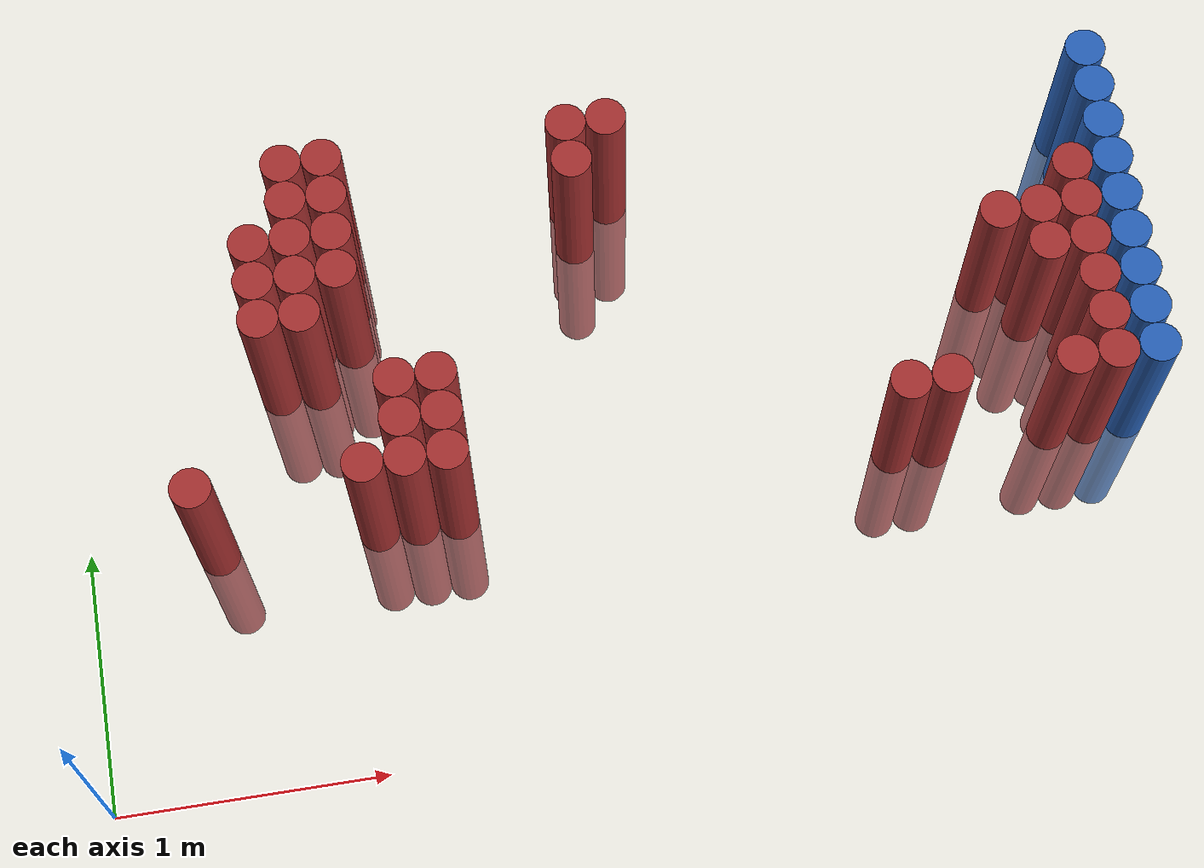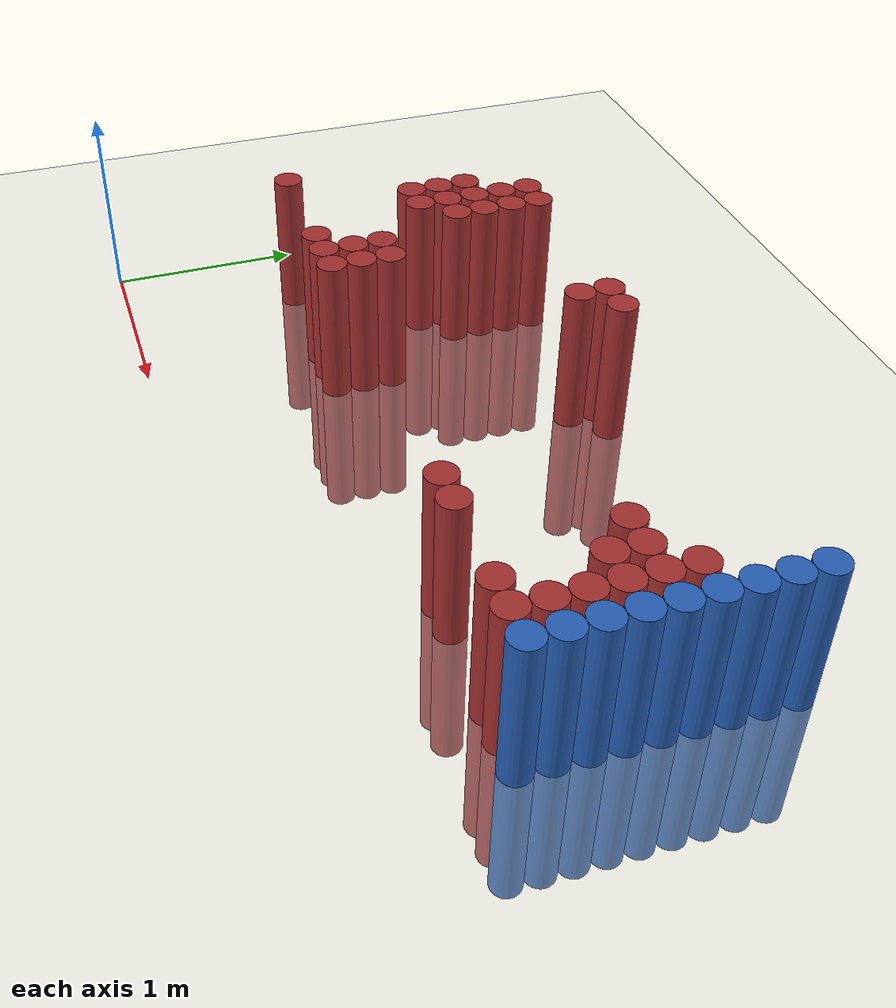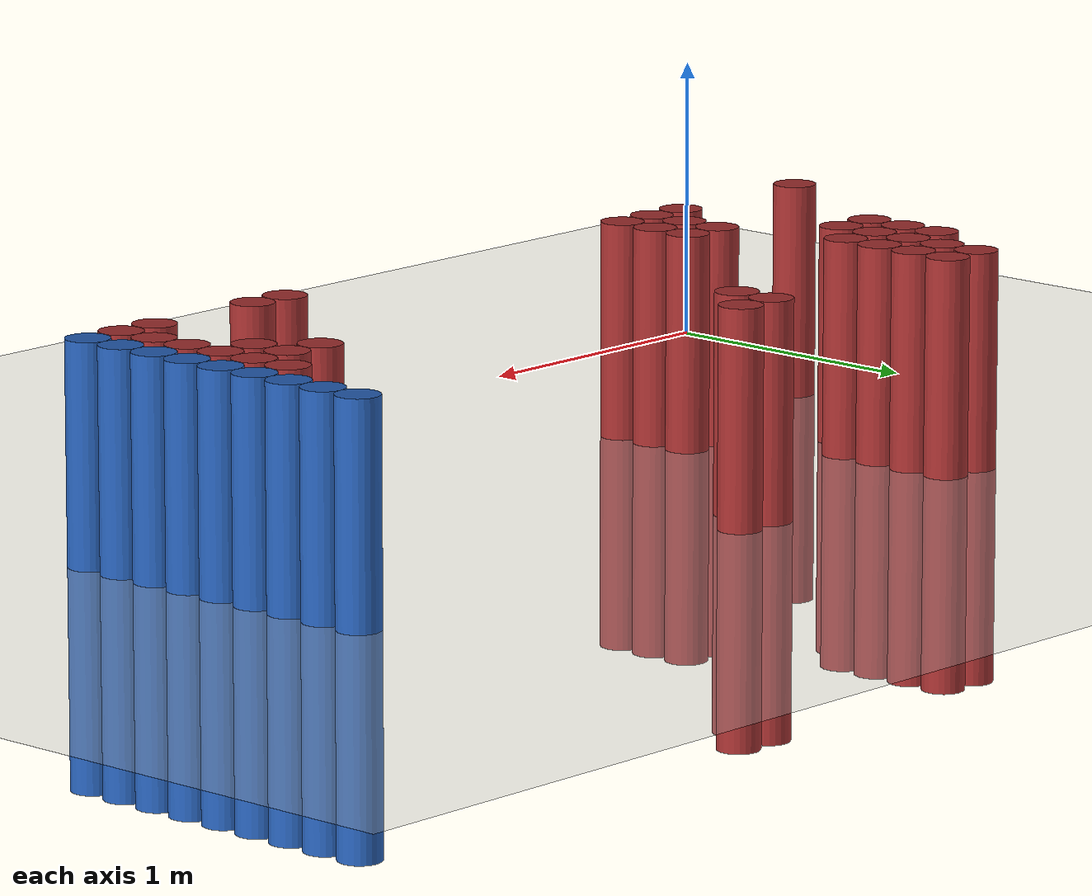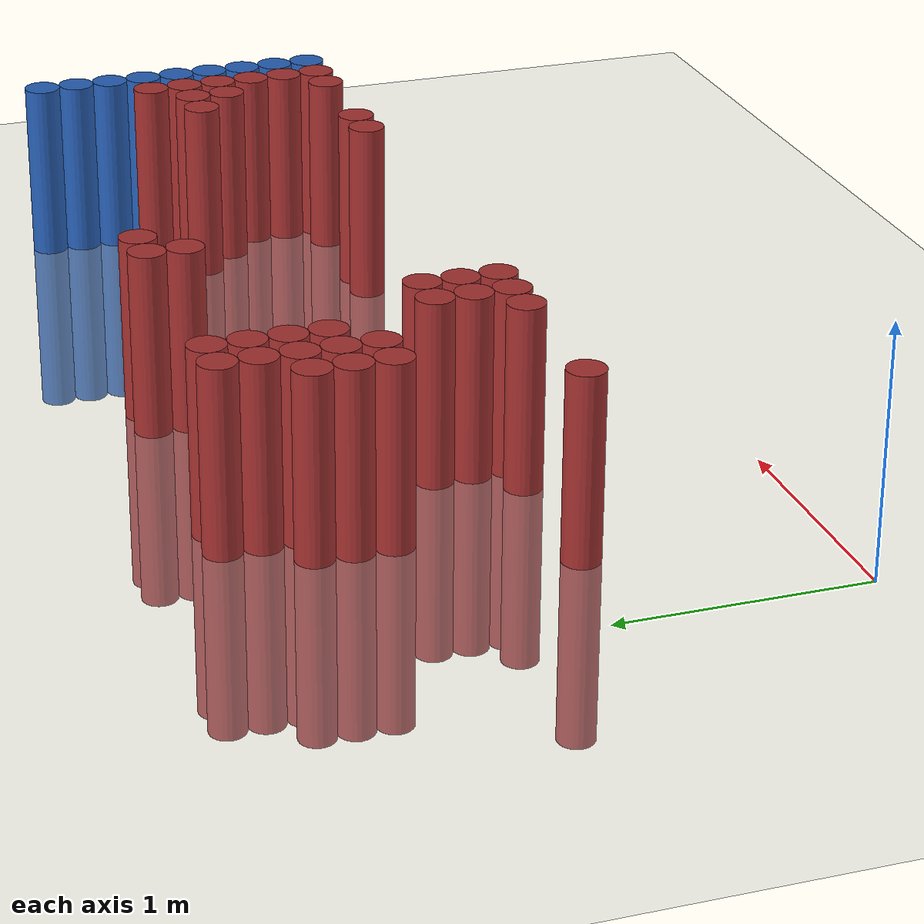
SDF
<sdf version="1.6">
 <world name="default">
  <model name="ground_plane">
   <static>1</static>
   <link name="link">
    <collision name="collision">
     <geometry><plane><normal>0 0 1</normal><size>100 100</size></plane></geometry>
     <surface><friction><ode><mu>100</mu><mu2>50</mu2></ode></friction></surface>
    </collision>
    <visual name="visual">
     <cast_shadows>0</cast_shadows>
     <geometry><plane><normal>0 0 1</normal><size>100 100</size></plane></geometry>
     <material>
      <script><uri>file://media/materials/scripts/gazebo.material</uri><name>Gazebo/Grey</name></script>
     </material>
    </visual>
   </link>
  </model>
  <model name="unit_cylinder_128">
   <static>1</static>
   <pose>3.925000 1.075000 0.000000 0.000000 0.000000 0.000000</pose>
   <link name="link">
    <inertial>
     <mass>1</mass>
     <inertia><ixx>0.145833</ixx><ixy>0</ixy><ixz>0</ixz><iyy>0.145833</iyy><iyz>0</iyz><izz>0.125</izz></inertia>
    </inertial>
    <collision name="collision">
     <geometry><cylinder><radius>0.075000</radius><length>1.5</length></cylinder></geometry>
    </collision>
    <visual name="visual">
     <geometry><cylinder><radius>0.075000</radius><length>1.5</length></cylinder></geometry>
     <material>
      <ambient>0.152000 0.379000 0.720000 1</ambient>
      <diffuse>0.152000 0.379000 0.720000 1</diffuse>
     </material>
     <material>
      <script><name>Gazebo/Grey</name><uri>file://media/materials/scripts/gazebo.material</uri></script>
     </material>
    </visual>
   </link>
  </model>
  <model name="unit_cylinder_130">
   <static>1</static>
   <pose>3.925000 1.225000 0.000000 0.000000 0.000000 0.000000</pose>
   <link name="link">
    <inertial>
     <mass>1</mass>
     <inertia><ixx>0.145833</ixx><ixy>0</ixy><ixz>0</ixz><iyy>0.145833</iyy><iyz>0</iyz><izz>0.125</izz></inertia>
    </inertial>
    <collision name="collision">
     <geometry><cylinder><radius>0.075000</radius><length>1.5</length></cylinder></geometry>
    </collision>
    <visual name="visual">
     <geometry><cylinder><radius>0.075000</radius><length>1.5</length></cylinder></geometry>
     <material>
      <ambient>0.152000 0.379000 0.720000 1</ambient>
      <diffuse>0.152000 0.379000 0.720000 1</diffuse>
     </material>
     <material>
      <script><name>Gazebo/Grey</name><uri>file://media/materials/scripts/gazebo.material</uri></script>
     </material>
    </visual>
   </link>
  </model>
  <model name="unit_cylinder_132">
   <static>1</static>
   <pose>3.925000 1.375000 0.000000 0.000000 0.000000 0.000000</pose>
   <link name="link">
    <inertial>
     <mass>1</mass>
     <inertia><ixx>0.145833</ixx><ixy>0</ixy><ixz>0</ixz><iyy>0.145833</iyy><iyz>0</iyz><izz>0.125</izz></inertia>
    </inertial>
    <collision name="collision">
     <geometry><cylinder><radius>0.075000</radius><length>1.5</length></cylinder></geometry>
    </collision>
    <visual name="visual">
     <geometry><cylinder><radius>0.075000</radius><length>1.5</length></cylinder></geometry>
     <material>
      <ambient>0.152000 0.379000 0.720000 1</ambient>
      <diffuse>0.152000 0.379000 0.720000 1</diffuse>
     </material>
     <material>
      <script><name>Gazebo/Grey</name><uri>file://media/materials/scripts/gazebo.material</uri></script>
     </material>
    </visual>
   </link>
  </model>
  <model name="unit_cylinder_134">
   <static>1</static>
   <pose>3.925000 1.525000 0.000000 0.000000 0.000000 0.000000</pose>
   <link name="link">
    <inertial>
     <mass>1</mass>
     <inertia><ixx>0.145833</ixx><ixy>0</ixy><ixz>0</ixz><iyy>0.145833</iyy><iyz>0</iyz><izz>0.125</izz></inertia>
    </inertial>
    <collision name="collision">
     <geometry><cylinder><radius>0.075000</radius><length>1.5</length></cylinder></geometry>
    </collision>
    <visual name="visual">
     <geometry><cylinder><radius>0.075000</radius><length>1.5</length></cylinder></geometry>
     <material>
      <ambient>0.152000 0.379000 0.720000 1</ambient>
      <diffuse>0.152000 0.379000 0.720000 1</diffuse>
     </material>
     <material>
      <script><name>Gazebo/Grey</name><uri>file://media/materials/scripts/gazebo.material</uri></script>
     </material>
    </visual>
   </link>
  </model>
  <model name="unit_cylinder_136">
   <static>1</static>
   <pose>3.925000 1.675000 0.000000 0.000000 0.000000 0.000000</pose>
   <link name="link">
    <inertial>
     <mass>1</mass>
     <inertia><ixx>0.145833</ixx><ixy>0</ixy><ixz>0</ixz><iyy>0.145833</iyy><iyz>0</iyz><izz>0.125</izz></inertia>
    </inertial>
    <collision name="collision">
     <geometry><cylinder><radius>0.075000</radius><length>1.5</length></cylinder></geometry>
    </collision>
    <visual name="visual">
     <geometry><cylinder><radius>0.075000</radius><length>1.5</length></cylinder></geometry>
     <material>
      <ambient>0.152000 0.379000 0.720000 1</ambient>
      <diffuse>0.152000 0.379000 0.720000 1</diffuse>
     </material>
     <material>
      <script><name>Gazebo/Grey</name><uri>file://media/materials/scripts/gazebo.material</uri></script>
     </material>
    </visual>
   </link>
  </model>
  <model name="unit_cylinder_138">
   <static>1</static>
   <pose>3.925000 1.825000 0.000000 0.000000 0.000000 0.000000</pose>
   <link name="link">
    <inertial>
     <mass>1</mass>
     <inertia><ixx>0.145833</ixx><ixy>0</ixy><ixz>0</ixz><iyy>0.145833</iyy><iyz>0</iyz><izz>0.125</izz></inertia>
    </inertial>
    <collision name="collision">
     <geometry><cylinder><radius>0.075000</radius><length>1.5</length></cylinder></geometry>
    </collision>
    <visual name="visual">
     <geometry><cylinder><radius>0.075000</radius><length>1.5</length></cylinder></geometry>
     <material>
      <ambient>0.152000 0.379000 0.720000 1</ambient>
      <diffuse>0.152000 0.379000 0.720000 1</diffuse>
     </material>
     <material>
      <script><name>Gazebo/Grey</name><uri>file://media/materials/scripts/gazebo.material</uri></script>
     </material>
    </visual>
   </link>
  </model>
  <model name="unit_cylinder_140">
   <static>1</static>
   <pose>3.925000 1.975000 0.000000 0.000000 0.000000 0.000000</pose>
   <link name="link">
    <inertial>
     <mass>1</mass>
     <inertia><ixx>0.145833</ixx><ixy>0</ixy><ixz>0</ixz><iyy>0.145833</iyy><iyz>0</iyz><izz>0.125</izz></inertia>
    </inertial>
    <collision name="collision">
     <geometry><cylinder><radius>0.075000</radius><length>1.5</length></cylinder></geometry>
    </collision>
    <visual name="visual">
     <geometry><cylinder><radius>0.075000</radius><length>1.5</length></cylinder></geometry>
     <material>
      <ambient>0.152000 0.379000 0.720000 1</ambient>
      <diffuse>0.152000 0.379000 0.720000 1</diffuse>
     </material>
     <material>
      <script><name>Gazebo/Grey</name><uri>file://media/materials/scripts/gazebo.material</uri></script>
     </material>
    </visual>
   </link>
  </model>
  <model name="unit_cylinder_142">
   <static>1</static>
   <pose>3.925000 2.125000 0.000000 0.000000 0.000000 0.000000</pose>
   <link name="link">
    <inertial>
     <mass>1</mass>
     <inertia><ixx>0.145833</ixx><ixy>0</ixy><ixz>0</ixz><iyy>0.145833</iyy><iyz>0</iyz><izz>0.125</izz></inertia>
    </inertial>
    <collision name="collision">
     <geometry><cylinder><radius>0.075000</radius><length>1.5</length></cylinder></geometry>
    </collision>
    <visual name="visual">
     <geometry><cylinder><radius>0.075000</radius><length>1.5</length></cylinder></geometry>
     <material>
      <ambient>0.152000 0.379000 0.720000 1</ambient>
      <diffuse>0.152000 0.379000 0.720000 1</diffuse>
     </material>
     <material>
      <script><name>Gazebo/Grey</name><uri>file://media/materials/scripts/gazebo.material</uri></script>
     </material>
    </visual>
   </link>
  </model>
  <model name="unit_cylinder_343">
   <static>1</static>
   <pose>0.475000 0.925000 0.000000 0.000000 0.000000 0.000000</pose>
   <link name="link">
    <inertial>
     <mass>1</mass>
     <inertia><ixx>0.145833</ixx><ixy>0</ixy><ixz>0</ixz><iyy>0.145833</iyy><iyz>0</iyz><izz>0.125</izz></inertia>
    </inertial>
    <collision name="collision">
     <geometry><cylinder><radius>0.075000</radius><length>1.5</length></cylinder></geometry>
    </collision>
    <visual name="visual">
     <geometry><cylinder><radius>0.075000</radius><length>1.5</length></cylinder></geometry>
     <material>
      <ambient>0.648000 0.192000 0.192000 1</ambient>
      <diffuse>0.648000 0.192000 0.192000 1</diffuse>
     </material>
     <material>
      <script><name>Gazebo/Grey</name><uri>file://media/materials/scripts/gazebo.material</uri></script>
     </material>
    </visual>
   </link>
  </model>
  <model name="unit_cylinder_352">
   <static>1</static>
   <pose>0.775000 1.525000 0.000000 0.000000 0.000000 0.000000</pose>
   <link name="link">
    <inertial>
     <mass>1</mass>
     <inertia><ixx>0.145833</ixx><ixy>0</ixy><ixz>0</ixz><iyy>0.145833</iyy><iyz>0</iyz><izz>0.125</izz></inertia>
    </inertial>
    <collision name="collision">
     <geometry><cylinder><radius>0.075000</radius><length>1.5</length></cylinder></geometry>
    </collision>
    <visual name="visual">
     <geometry><cylinder><radius>0.075000</radius><length>1.5</length></cylinder></geometry>
     <material>
      <ambient>0.648000 0.192000 0.192000 1</ambient>
      <diffuse>0.648000 0.192000 0.192000 1</diffuse>
     </material>
     <material>
      <script><name>Gazebo/Grey</name><uri>file://media/materials/scripts/gazebo.material</uri></script>
     </material>
    </visual>
   </link>
  </model>
  <model name="unit_cylinder_353">
   <static>1</static>
   <pose>0.775000 1.675000 0.000000 0.000000 0.000000 0.000000</pose>
   <link name="link">
    <inertial>
     <mass>1</mass>
     <inertia><ixx>0.145833</ixx><ixy>0</ixy><ixz>0</ixz><iyy>0.145833</iyy><iyz>0</iyz><izz>0.125</izz></inertia>
    </inertial>
    <collision name="collision">
     <geometry><cylinder><radius>0.075000</radius><length>1.5</length></cylinder></geometry>
    </collision>
    <visual name="visual">
     <geometry><cylinder><radius>0.075000</radius><length>1.5</length></cylinder></geometry>
     <material>
      <ambient>0.648000 0.192000 0.192000 1</ambient>
      <diffuse>0.648000 0.192000 0.192000 1</diffuse>
     </material>
     <material>
      <script><name>Gazebo/Grey</name><uri>file://media/materials/scripts/gazebo.material</uri></script>
     </material>
    </visual>
   </link>
  </model>
  <model name="unit_cylinder_354">
   <static>1</static>
   <pose>0.775000 1.825000 0.000000 0.000000 0.000000 0.000000</pose>
   <link name="link">
    <inertial>
     <mass>1</mass>
     <inertia><ixx>0.145833</ixx><ixy>0</ixy><ixz>0</ixz><iyy>0.145833</iyy><iyz>0</iyz><izz>0.125</izz></inertia>
    </inertial>
    <collision name="collision">
     <geometry><cylinder><radius>0.075000</radius><length>1.5</length></cylinder></geometry>
    </collision>
    <visual name="visual">
     <geometry><cylinder><radius>0.075000</radius><length>1.5</length></cylinder></geometry>
     <material>
      <ambient>0.648000 0.192000 0.192000 1</ambient>
      <diffuse>0.648000 0.192000 0.192000 1</diffuse>
     </material>
     <material>
      <script><name>Gazebo/Grey</name><uri>file://media/materials/scripts/gazebo.material</uri></script>
     </material>
    </visual>
   </link>
  </model>
  <model name="unit_cylinder_358">
   <static>1</static>
   <pose>0.925000 1.525000 0.000000 0.000000 0.000000 0.000000</pose>
   <link name="link">
    <inertial>
     <mass>1</mass>
     <inertia><ixx>0.145833</ixx><ixy>0</ixy><ixz>0</ixz><iyy>0.145833</iyy><iyz>0</iyz><izz>0.125</izz></inertia>
    </inertial>
    <collision name="collision">
     <geometry><cylinder><radius>0.075000</radius><length>1.5</length></cylinder></geometry>
    </collision>
    <visual name="visual">
     <geometry><cylinder><radius>0.075000</radius><length>1.5</length></cylinder></geometry>
     <material>
      <ambient>0.648000 0.192000 0.192000 1</ambient>
      <diffuse>0.648000 0.192000 0.192000 1</diffuse>
     </material>
     <material>
      <script><name>Gazebo/Grey</name><uri>file://media/materials/scripts/gazebo.material</uri></script>
     </material>
    </visual>
   </link>
  </model>
  <model name="unit_cylinder_359">
   <static>1</static>
   <pose>0.925000 1.675000 0.000000 0.000000 0.000000 0.000000</pose>
   <link name="link">
    <inertial>
     <mass>1</mass>
     <inertia><ixx>0.145833</ixx><ixy>0</ixy><ixz>0</ixz><iyy>0.145833</iyy><iyz>0</iyz><izz>0.125</izz></inertia>
    </inertial>
    <collision name="collision">
     <geometry><cylinder><radius>0.075000</radius><length>1.5</length></cylinder></geometry>
    </collision>
    <visual name="visual">
     <geometry><cylinder><radius>0.075000</radius><length>1.5</length></cylinder></geometry>
     <material>
      <ambient>0.648000 0.192000 0.192000 1</ambient>
      <diffuse>0.648000 0.192000 0.192000 1</diffuse>
     </material>
     <material>
      <script><name>Gazebo/Grey</name><uri>file://media/materials/scripts/gazebo.material</uri></script>
     </material>
    </visual>
   </link>
  </model>
  <model name="unit_cylinder_360">
   <static>1</static>
   <pose>0.925000 1.825000 0.000000 0.000000 0.000000 0.000000</pose>
   <link name="link">
    <inertial>
     <mass>1</mass>
     <inertia><ixx>0.145833</ixx><ixy>0</ixy><ixz>0</ixz><iyy>0.145833</iyy><iyz>0</iyz><izz>0.125</izz></inertia>
    </inertial>
    <collision name="collision">
     <geometry><cylinder><radius>0.075000</radius><length>1.5</length></cylinder></geometry>
    </collision>
    <visual name="visual">
     <geometry><cylinder><radius>0.075000</radius><length>1.5</length></cylinder></geometry>
     <material>
      <ambient>0.648000 0.192000 0.192000 1</ambient>
      <diffuse>0.648000 0.192000 0.192000 1</diffuse>
     </material>
     <material>
      <script><name>Gazebo/Grey</name><uri>file://media/materials/scripts/gazebo.material</uri></script>
     </material>
    </visual>
   </link>
  </model>
  <model name="unit_cylinder_361">
   <static>1</static>
   <pose>0.925000 1.975000 0.000000 0.000000 0.000000 0.000000</pose>
   <link name="link">
    <inertial>
     <mass>1</mass>
     <inertia><ixx>0.145833</ixx><ixy>0</ixy><ixz>0</ixz><iyy>0.145833</iyy><iyz>0</iyz><izz>0.125</izz></inertia>
    </inertial>
    <collision name="collision">
     <geometry><cylinder><radius>0.075000</radius><length>1.5</length></cylinder></geometry>
    </collision>
    <visual name="visual">
     <geometry><cylinder><radius>0.075000</radius><length>1.5</length></cylinder></geometry>
     <material>
      <ambient>0.648000 0.192000 0.192000 1</ambient>
      <diffuse>0.648000 0.192000 0.192000 1</diffuse>
     </material>
     <material>
      <script><name>Gazebo/Grey</name><uri>file://media/materials/scripts/gazebo.material</uri></script>
     </material>
    </visual>
   </link>
  </model>
  <model name="unit_cylinder_362">
   <static>1</static>
   <pose>0.925000 2.125000 0.000000 0.000000 0.000000 0.000000</pose>
   <link name="link">
    <inertial>
     <mass>1</mass>
     <inertia><ixx>0.145833</ixx><ixy>0</ixy><ixz>0</ixz><iyy>0.145833</iyy><iyz>0</iyz><izz>0.125</izz></inertia>
    </inertial>
    <collision name="collision">
     <geometry><cylinder><radius>0.075000</radius><length>1.5</length></cylinder></geometry>
    </collision>
    <visual name="visual">
     <geometry><cylinder><radius>0.075000</radius><length>1.5</length></cylinder></geometry>
     <material>
      <ambient>0.648000 0.192000 0.192000 1</ambient>
      <diffuse>0.648000 0.192000 0.192000 1</diffuse>
     </material>
     <material>
      <script><name>Gazebo/Grey</name><uri>file://media/materials/scripts/gazebo.material</uri></script>
     </material>
    </visual>
   </link>
  </model>
  <model name="unit_cylinder_365">
   <static>1</static>
   <pose>1.075000 0.925000 0.000000 0.000000 0.000000 0.000000</pose>
   <link name="link">
    <inertial>
     <mass>1</mass>
     <inertia><ixx>0.145833</ixx><ixy>0</ixy><ixz>0</ixz><iyy>0.145833</iyy><iyz>0</iyz><izz>0.125</izz></inertia>
    </inertial>
    <collision name="collision">
     <geometry><cylinder><radius>0.075000</radius><length>1.5</length></cylinder></geometry>
    </collision>
    <visual name="visual">
     <geometry><cylinder><radius>0.075000</radius><length>1.5</length></cylinder></geometry>
     <material>
      <ambient>0.648000 0.192000 0.192000 1</ambient>
      <diffuse>0.648000 0.192000 0.192000 1</diffuse>
     </material>
     <material>
      <script><name>Gazebo/Grey</name><uri>file://media/materials/scripts/gazebo.material</uri></script>
     </material>
    </visual>
   </link>
  </model>
  <model name="unit_cylinder_366">
   <static>1</static>
   <pose>1.075000 1.675000 0.000000 0.000000 0.000000 0.000000</pose>
   <link name="link">
    <inertial>
     <mass>1</mass>
     <inertia><ixx>0.145833</ixx><ixy>0</ixy><ixz>0</ixz><iyy>0.145833</iyy><iyz>0</iyz><izz>0.125</izz></inertia>
    </inertial>
    <collision name="collision">
     <geometry><cylinder><radius>0.075000</radius><length>1.5</length></cylinder></geometry>
    </collision>
    <visual name="visual">
     <geometry><cylinder><radius>0.075000</radius><length>1.5</length></cylinder></geometry>
     <material>
      <ambient>0.648000 0.192000 0.192000 1</ambient>
      <diffuse>0.648000 0.192000 0.192000 1</diffuse>
     </material>
     <material>
      <script><name>Gazebo/Grey</name><uri>file://media/materials/scripts/gazebo.material</uri></script>
     </material>
    </visual>
   </link>
  </model>
  <model name="unit_cylinder_367">
   <static>1</static>
   <pose>1.075000 1.825000 0.000000 0.000000 0.000000 0.000000</pose>
   <link name="link">
    <inertial>
     <mass>1</mass>
     <inertia><ixx>0.145833</ixx><ixy>0</ixy><ixz>0</ixz><iyy>0.145833</iyy><iyz>0</iyz><izz>0.125</izz></inertia>
    </inertial>
    <collision name="collision">
     <geometry><cylinder><radius>0.075000</radius><length>1.5</length></cylinder></geometry>
    </collision>
    <visual name="visual">
     <geometry><cylinder><radius>0.075000</radius><length>1.5</length></cylinder></geometry>
     <material>
      <ambient>0.648000 0.192000 0.192000 1</ambient>
      <diffuse>0.648000 0.192000 0.192000 1</diffuse>
     </material>
     <material>
      <script><name>Gazebo/Grey</name><uri>file://media/materials/scripts/gazebo.material</uri></script>
     </material>
    </visual>
   </link>
  </model>
  <model name="unit_cylinder_368">
   <static>1</static>
   <pose>1.075000 1.975000 0.000000 0.000000 0.000000 0.000000</pose>
   <link name="link">
    <inertial>
     <mass>1</mass>
     <inertia><ixx>0.145833</ixx><ixy>0</ixy><ixz>0</ixz><iyy>0.145833</iyy><iyz>0</iyz><izz>0.125</izz></inertia>
    </inertial>
    <collision name="collision">
     <geometry><cylinder><radius>0.075000</radius><length>1.5</length></cylinder></geometry>
    </collision>
    <visual name="visual">
     <geometry><cylinder><radius>0.075000</radius><length>1.5</length></cylinder></geometry>
     <material>
      <ambient>0.648000 0.192000 0.192000 1</ambient>
      <diffuse>0.648000 0.192000 0.192000 1</diffuse>
     </material>
     <material>
      <script><name>Gazebo/Grey</name><uri>file://media/materials/scripts/gazebo.material</uri></script>
     </material>
    </visual>
   </link>
  </model>
  <model name="unit_cylinder_369">
   <static>1</static>
   <pose>1.075000 2.125000 0.000000 0.000000 0.000000 0.000000</pose>
   <link name="link">
    <inertial>
     <mass>1</mass>
     <inertia><ixx>0.145833</ixx><ixy>0</ixy><ixz>0</ixz><iyy>0.145833</iyy><iyz>0</iyz><izz>0.125</izz></inertia>
    </inertial>
    <collision name="collision">
     <geometry><cylinder><radius>0.075000</radius><length>1.5</length></cylinder></geometry>
    </collision>
    <visual name="visual">
     <geometry><cylinder><radius>0.075000</radius><length>1.5</length></cylinder></geometry>
     <material>
      <ambient>0.648000 0.192000 0.192000 1</ambient>
      <diffuse>0.648000 0.192000 0.192000 1</diffuse>
     </material>
     <material>
      <script><name>Gazebo/Grey</name><uri>file://media/materials/scripts/gazebo.material</uri></script>
     </material>
    </visual>
   </link>
  </model>
  <model name="unit_cylinder_371">
   <static>1</static>
   <pose>1.225000 0.925000 0.000000 0.000000 0.000000 0.000000</pose>
   <link name="link">
    <inertial>
     <mass>1</mass>
     <inertia><ixx>0.145833</ixx><ixy>0</ixy><ixz>0</ixz><iyy>0.145833</iyy><iyz>0</iyz><izz>0.125</izz></inertia>
    </inertial>
    <collision name="collision">
     <geometry><cylinder><radius>0.075000</radius><length>1.5</length></cylinder></geometry>
    </collision>
    <visual name="visual">
     <geometry><cylinder><radius>0.075000</radius><length>1.5</length></cylinder></geometry>
     <material>
      <ambient>0.648000 0.192000 0.192000 1</ambient>
      <diffuse>0.648000 0.192000 0.192000 1</diffuse>
     </material>
     <material>
      <script><name>Gazebo/Grey</name><uri>file://media/materials/scripts/gazebo.material</uri></script>
     </material>
    </visual>
   </link>
  </model>
  <model name="unit_cylinder_372">
   <static>1</static>
   <pose>1.225000 1.075000 0.000000 0.000000 0.000000 0.000000</pose>
   <link name="link">
    <inertial>
     <mass>1</mass>
     <inertia><ixx>0.145833</ixx><ixy>0</ixy><ixz>0</ixz><iyy>0.145833</iyy><iyz>0</iyz><izz>0.125</izz></inertia>
    </inertial>
    <collision name="collision">
     <geometry><cylinder><radius>0.075000</radius><length>1.5</length></cylinder></geometry>
    </collision>
    <visual name="visual">
     <geometry><cylinder><radius>0.075000</radius><length>1.5</length></cylinder></geometry>
     <material>
      <ambient>0.648000 0.192000 0.192000 1</ambient>
      <diffuse>0.648000 0.192000 0.192000 1</diffuse>
     </material>
     <material>
      <script><name>Gazebo/Grey</name><uri>file://media/materials/scripts/gazebo.material</uri></script>
     </material>
    </visual>
   </link>
  </model>
  <model name="unit_cylinder_373">
   <static>1</static>
   <pose>1.225000 1.225000 0.000000 0.000000 0.000000 0.000000</pose>
   <link name="link">
    <inertial>
     <mass>1</mass>
     <inertia><ixx>0.145833</ixx><ixy>0</ixy><ixz>0</ixz><iyy>0.145833</iyy><iyz>0</iyz><izz>0.125</izz></inertia>
    </inertial>
    <collision name="collision">
     <geometry><cylinder><radius>0.075000</radius><length>1.5</length></cylinder></geometry>
    </collision>
    <visual name="visual">
     <geometry><cylinder><radius>0.075000</radius><length>1.5</length></cylinder></geometry>
     <material>
      <ambient>0.648000 0.192000 0.192000 1</ambient>
      <diffuse>0.648000 0.192000 0.192000 1</diffuse>
     </material>
     <material>
      <script><name>Gazebo/Grey</name><uri>file://media/materials/scripts/gazebo.material</uri></script>
     </material>
    </visual>
   </link>
  </model>
  <model name="unit_cylinder_374">
   <static>1</static>
   <pose>1.375000 0.925000 0.000000 0.000000 0.000000 0.000000</pose>
   <link name="link">
    <inertial>
     <mass>1</mass>
     <inertia><ixx>0.145833</ixx><ixy>0</ixy><ixz>0</ixz><iyy>0.145833</iyy><iyz>0</iyz><izz>0.125</izz></inertia>
    </inertial>
    <collision name="collision">
     <geometry><cylinder><radius>0.075000</radius><length>1.5</length></cylinder></geometry>
    </collision>
    <visual name="visual">
     <geometry><cylinder><radius>0.075000</radius><length>1.5</length></cylinder></geometry>
     <material>
      <ambient>0.648000 0.192000 0.192000 1</ambient>
      <diffuse>0.648000 0.192000 0.192000 1</diffuse>
     </material>
     <material>
      <script><name>Gazebo/Grey</name><uri>file://media/materials/scripts/gazebo.material</uri></script>
     </material>
    </visual>
   </link>
  </model>
  <model name="unit_cylinder_375">
   <static>1</static>
   <pose>1.375000 1.075000 0.000000 0.000000 0.000000 0.000000</pose>
   <link name="link">
    <inertial>
     <mass>1</mass>
     <inertia><ixx>0.145833</ixx><ixy>0</ixy><ixz>0</ixz><iyy>0.145833</iyy><iyz>0</iyz><izz>0.125</izz></inertia>
    </inertial>
    <collision name="collision">
     <geometry><cylinder><radius>0.075000</radius><length>1.5</length></cylinder></geometry>
    </collision>
    <visual name="visual">
     <geometry><cylinder><radius>0.075000</radius><length>1.5</length></cylinder></geometry>
     <material>
      <ambient>0.648000 0.192000 0.192000 1</ambient>
      <diffuse>0.648000 0.192000 0.192000 1</diffuse>
     </material>
     <material>
      <script><name>Gazebo/Grey</name><uri>file://media/materials/scripts/gazebo.material</uri></script>
     </material>
    </visual>
   </link>
  </model>
  <model name="unit_cylinder_376">
   <static>1</static>
   <pose>1.375000 1.225000 0.000000 0.000000 0.000000 0.000000</pose>
   <link name="link">
    <inertial>
     <mass>1</mass>
     <inertia><ixx>0.145833</ixx><ixy>0</ixy><ixz>0</ixz><iyy>0.145833</iyy><iyz>0</iyz><izz>0.125</izz></inertia>
    </inertial>
    <collision name="collision">
     <geometry><cylinder><radius>0.075000</radius><length>1.5</length></cylinder></geometry>
    </collision>
    <visual name="visual">
     <geometry><cylinder><radius>0.075000</radius><length>1.5</length></cylinder></geometry>
     <material>
      <ambient>0.648000 0.192000 0.192000 1</ambient>
      <diffuse>0.648000 0.192000 0.192000 1</diffuse>
     </material>
     <material>
      <script><name>Gazebo/Grey</name><uri>file://media/materials/scripts/gazebo.material</uri></script>
     </material>
    </visual>
   </link>
  </model>
  <model name="unit_cylinder_390">
   <static>1</static>
   <pose>1.975000 1.975000 0.000000 0.000000 0.000000 0.000000</pose>
   <link name="link">
    <inertial>
     <mass>1</mass>
     <inertia><ixx>0.145833</ixx><ixy>0</ixy><ixz>0</ixz><iyy>0.145833</iyy><iyz>0</iyz><izz>0.125</izz></inertia>
    </inertial>
    <collision name="collision">
     <geometry><cylinder><radius>0.075000</radius><length>1.5</length></cylinder></geometry>
    </collision>
    <visual name="visual">
     <geometry><cylinder><radius>0.075000</radius><length>1.5</length></cylinder></geometry>
     <material>
      <ambient>0.648000 0.192000 0.192000 1</ambient>
      <diffuse>0.648000 0.192000 0.192000 1</diffuse>
     </material>
     <material>
      <script><name>Gazebo/Grey</name><uri>file://media/materials/scripts/gazebo.material</uri></script>
     </material>
    </visual>
   </link>
  </model>
  <model name="unit_cylinder_391">
   <static>1</static>
   <pose>1.975000 2.125000 0.000000 0.000000 0.000000 0.000000</pose>
   <link name="link">
    <inertial>
     <mass>1</mass>
     <inertia><ixx>0.145833</ixx><ixy>0</ixy><ixz>0</ixz><iyy>0.145833</iyy><iyz>0</iyz><izz>0.125</izz></inertia>
    </inertial>
    <collision name="collision">
     <geometry><cylinder><radius>0.075000</radius><length>1.5</length></cylinder></geometry>
    </collision>
    <visual name="visual">
     <geometry><cylinder><radius>0.075000</radius><length>1.5</length></cylinder></geometry>
     <material>
      <ambient>0.648000 0.192000 0.192000 1</ambient>
      <diffuse>0.648000 0.192000 0.192000 1</diffuse>
     </material>
     <material>
      <script><name>Gazebo/Grey</name><uri>file://media/materials/scripts/gazebo.material</uri></script>
     </material>
    </visual>
   </link>
  </model>
  <model name="unit_cylinder_395">
   <static>1</static>
   <pose>2.125000 2.125000 0.000000 0.000000 0.000000 0.000000</pose>
   <link name="link">
    <inertial>
     <mass>1</mass>
     <inertia><ixx>0.145833</ixx><ixy>0</ixy><ixz>0</ixz><iyy>0.145833</iyy><iyz>0</iyz><izz>0.125</izz></inertia>
    </inertial>
    <collision name="collision">
     <geometry><cylinder><radius>0.075000</radius><length>1.5</length></cylinder></geometry>
    </collision>
    <visual name="visual">
     <geometry><cylinder><radius>0.075000</radius><length>1.5</length></cylinder></geometry>
     <material>
      <ambient>0.648000 0.192000 0.192000 1</ambient>
      <diffuse>0.648000 0.192000 0.192000 1</diffuse>
     </material>
     <material>
      <script><name>Gazebo/Grey</name><uri>file://media/materials/scripts/gazebo.material</uri></script>
     </material>
    </visual>
   </link>
  </model>
  <model name="unit_cylinder_410">
   <static>1</static>
   <pose>3.025000 0.925000 0.000000 0.000000 0.000000 0.000000</pose>
   <link name="link">
    <inertial>
     <mass>1</mass>
     <inertia><ixx>0.145833</ixx><ixy>0</ixy><ixz>0</ixz><iyy>0.145833</iyy><iyz>0</iyz><izz>0.125</izz></inertia>
    </inertial>
    <collision name="collision">
     <geometry><cylinder><radius>0.075000</radius><length>1.5</length></cylinder></geometry>
    </collision>
    <visual name="visual">
     <geometry><cylinder><radius>0.075000</radius><length>1.5</length></cylinder></geometry>
     <material>
      <ambient>0.648000 0.192000 0.192000 1</ambient>
      <diffuse>0.648000 0.192000 0.192000 1</diffuse>
     </material>
     <material>
      <script><name>Gazebo/Grey</name><uri>file://media/materials/scripts/gazebo.material</uri></script>
     </material>
    </visual>
   </link>
  </model>
  <model name="unit_cylinder_413">
   <static>1</static>
   <pose>3.175000 0.925000 0.000000 0.000000 0.000000 0.000000</pose>
   <link name="link">
    <inertial>
     <mass>1</mass>
     <inertia><ixx>0.145833</ixx><ixy>0</ixy><ixz>0</ixz><iyy>0.145833</iyy><iyz>0</iyz><izz>0.125</izz></inertia>
    </inertial>
    <collision name="collision">
     <geometry><cylinder><radius>0.075000</radius><length>1.5</length></cylinder></geometry>
    </collision>
    <visual name="visual">
     <geometry><cylinder><radius>0.075000</radius><length>1.5</length></cylinder></geometry>
     <material>
      <ambient>0.648000 0.192000 0.192000 1</ambient>
      <diffuse>0.648000 0.192000 0.192000 1</diffuse>
     </material>
     <material>
      <script><name>Gazebo/Grey</name><uri>file://media/materials/scripts/gazebo.material</uri></script>
     </material>
    </visual>
   </link>
  </model>
  <model name="unit_cylinder_423">
   <static>1</static>
   <pose>3.475000 1.525000 0.000000 0.000000 0.000000 0.000000</pose>
   <link name="link">
    <inertial>
     <mass>1</mass>
     <inertia><ixx>0.145833</ixx><ixy>0</ixy><ixz>0</ixz><iyy>0.145833</iyy><iyz>0</iyz><izz>0.125</izz></inertia>
    </inertial>
    <collision name="collision">
     <geometry><cylinder><radius>0.075000</radius><length>1.5</length></cylinder></geometry>
    </collision>
    <visual name="visual">
     <geometry><cylinder><radius>0.075000</radius><length>1.5</length></cylinder></geometry>
     <material>
      <ambient>0.648000 0.192000 0.192000 1</ambient>
      <diffuse>0.648000 0.192000 0.192000 1</diffuse>
     </material>
     <material>
      <script><name>Gazebo/Grey</name><uri>file://media/materials/scripts/gazebo.material</uri></script>
     </material>
    </visual>
   </link>
  </model>
  <model name="unit_cylinder_435">
   <static>1</static>
   <pose>3.625000 0.925000 0.000000 0.000000 0.000000 0.000000</pose>
   <link name="link">
    <inertial>
     <mass>1</mass>
     <inertia><ixx>0.145833</ixx><ixy>0</ixy><ixz>0</ixz><iyy>0.145833</iyy><iyz>0</iyz><izz>0.125</izz></inertia>
    </inertial>
    <collision name="collision">
     <geometry><cylinder><radius>0.075000</radius><length>1.5</length></cylinder></geometry>
    </collision>
    <visual name="visual">
     <geometry><cylinder><radius>0.075000</radius><length>1.5</length></cylinder></geometry>
     <material>
      <ambient>0.648000 0.192000 0.192000 1</ambient>
      <diffuse>0.648000 0.192000 0.192000 1</diffuse>
     </material>
     <material>
      <script><name>Gazebo/Grey</name><uri>file://media/materials/scripts/gazebo.material</uri></script>
     </material>
    </visual>
   </link>
  </model>
  <model name="unit_cylinder_436">
   <static>1</static>
   <pose>3.625000 1.375000 0.000000 0.000000 0.000000 0.000000</pose>
   <link name="link">
    <inertial>
     <mass>1</mass>
     <inertia><ixx>0.145833</ixx><ixy>0</ixy><ixz>0</ixz><iyy>0.145833</iyy><iyz>0</iyz><izz>0.125</izz></inertia>
    </inertial>
    <collision name="collision">
     <geometry><cylinder><radius>0.075000</radius><length>1.5</length></cylinder></geometry>
    </collision>
    <visual name="visual">
     <geometry><cylinder><radius>0.075000</radius><length>1.5</length></cylinder></geometry>
     <material>
      <ambient>0.648000 0.192000 0.192000 1</ambient>
      <diffuse>0.648000 0.192000 0.192000 1</diffuse>
     </material>
     <material>
      <script><name>Gazebo/Grey</name><uri>file://media/materials/scripts/gazebo.material</uri></script>
     </material>
    </visual>
   </link>
  </model>
  <model name="unit_cylinder_437">
   <static>1</static>
   <pose>3.625000 1.525000 0.000000 0.000000 0.000000 0.000000</pose>
   <link name="link">
    <inertial>
     <mass>1</mass>
     <inertia><ixx>0.145833</ixx><ixy>0</ixy><ixz>0</ixz><iyy>0.145833</iyy><iyz>0</iyz><izz>0.125</izz></inertia>
    </inertial>
    <collision name="collision">
     <geometry><cylinder><radius>0.075000</radius><length>1.5</length></cylinder></geometry>
    </collision>
    <visual name="visual">
     <geometry><cylinder><radius>0.075000</radius><length>1.5</length></cylinder></geometry>
     <material>
      <ambient>0.648000 0.192000 0.192000 1</ambient>
      <diffuse>0.648000 0.192000 0.192000 1</diffuse>
     </material>
     <material>
      <script><name>Gazebo/Grey</name><uri>file://media/materials/scripts/gazebo.material</uri></script>
     </material>
    </visual>
   </link>
  </model>
  <model name="unit_cylinder_450">
   <static>1</static>
   <pose>3.775000 0.925000 0.000000 0.000000 0.000000 0.000000</pose>
   <link name="link">
    <inertial>
     <mass>1</mass>
     <inertia><ixx>0.145833</ixx><ixy>0</ixy><ixz>0</ixz><iyy>0.145833</iyy><iyz>0</iyz><izz>0.125</izz></inertia>
    </inertial>
    <collision name="collision">
     <geometry><cylinder><radius>0.075000</radius><length>1.5</length></cylinder></geometry>
    </collision>
    <visual name="visual">
     <geometry><cylinder><radius>0.075000</radius><length>1.5</length></cylinder></geometry>
     <material>
      <ambient>0.648000 0.192000 0.192000 1</ambient>
      <diffuse>0.648000 0.192000 0.192000 1</diffuse>
     </material>
     <material>
      <script><name>Gazebo/Grey</name><uri>file://media/materials/scripts/gazebo.material</uri></script>
     </material>
    </visual>
   </link>
  </model>
  <model name="unit_cylinder_451">
   <static>1</static>
   <pose>3.775000 1.075000 0.000000 0.000000 0.000000 0.000000</pose>
   <link name="link">
    <inertial>
     <mass>1</mass>
     <inertia><ixx>0.145833</ixx><ixy>0</ixy><ixz>0</ixz><iyy>0.145833</iyy><iyz>0</iyz><izz>0.125</izz></inertia>
    </inertial>
    <collision name="collision">
     <geometry><cylinder><radius>0.075000</radius><length>1.5</length></cylinder></geometry>
    </collision>
    <visual name="visual">
     <geometry><cylinder><radius>0.075000</radius><length>1.5</length></cylinder></geometry>
     <material>
      <ambient>0.648000 0.192000 0.192000 1</ambient>
      <diffuse>0.648000 0.192000 0.192000 1</diffuse>
     </material>
     <material>
      <script><name>Gazebo/Grey</name><uri>file://media/materials/scripts/gazebo.material</uri></script>
     </material>
    </visual>
   </link>
  </model>
  <model name="unit_cylinder_452">
   <static>1</static>
   <pose>3.775000 1.225000 0.000000 0.000000 0.000000 0.000000</pose>
   <link name="link">
    <inertial>
     <mass>1</mass>
     <inertia><ixx>0.145833</ixx><ixy>0</ixy><ixz>0</ixz><iyy>0.145833</iyy><iyz>0</iyz><izz>0.125</izz></inertia>
    </inertial>
    <collision name="collision">
     <geometry><cylinder><radius>0.075000</radius><length>1.5</length></cylinder></geometry>
    </collision>
    <visual name="visual">
     <geometry><cylinder><radius>0.075000</radius><length>1.5</length></cylinder></geometry>
     <material>
      <ambient>0.648000 0.192000 0.192000 1</ambient>
      <diffuse>0.648000 0.192000 0.192000 1</diffuse>
     </material>
     <material>
      <script><name>Gazebo/Grey</name><uri>file://media/materials/scripts/gazebo.material</uri></script>
     </material>
    </visual>
   </link>
  </model>
  <model name="unit_cylinder_453">
   <static>1</static>
   <pose>3.775000 1.375000 0.000000 0.000000 0.000000 0.000000</pose>
   <link name="link">
    <inertial>
     <mass>1</mass>
     <inertia><ixx>0.145833</ixx><ixy>0</ixy><ixz>0</ixz><iyy>0.145833</iyy><iyz>0</iyz><izz>0.125</izz></inertia>
    </inertial>
    <collision name="collision">
     <geometry><cylinder><radius>0.075000</radius><length>1.5</length></cylinder></geometry>
    </collision>
    <visual name="visual">
     <geometry><cylinder><radius>0.075000</radius><length>1.5</length></cylinder></geometry>
     <material>
      <ambient>0.648000 0.192000 0.192000 1</ambient>
      <diffuse>0.648000 0.192000 0.192000 1</diffuse>
     </material>
     <material>
      <script><name>Gazebo/Grey</name><uri>file://media/materials/scripts/gazebo.material</uri></script>
     </material>
    </visual>
   </link>
  </model>
  <model name="unit_cylinder_454">
   <static>1</static>
   <pose>3.775000 1.525000 0.000000 0.000000 0.000000 0.000000</pose>
   <link name="link">
    <inertial>
     <mass>1</mass>
     <inertia><ixx>0.145833</ixx><ixy>0</ixy><ixz>0</ixz><iyy>0.145833</iyy><iyz>0</iyz><izz>0.125</izz></inertia>
    </inertial>
    <collision name="collision">
     <geometry><cylinder><radius>0.075000</radius><length>1.5</length></cylinder></geometry>
    </collision>
    <visual name="visual">
     <geometry><cylinder><radius>0.075000</radius><length>1.5</length></cylinder></geometry>
     <material>
      <ambient>0.648000 0.192000 0.192000 1</ambient>
      <diffuse>0.648000 0.192000 0.192000 1</diffuse>
     </material>
     <material>
      <script><name>Gazebo/Grey</name><uri>file://media/materials/scripts/gazebo.material</uri></script>
     </material>
    </visual>
   </link>
  </model>
  <model name="unit_cylinder_455">
   <static>1</static>
   <pose>3.775000 1.675000 0.000000 0.000000 0.000000 0.000000</pose>
   <link name="link">
    <inertial>
     <mass>1</mass>
     <inertia><ixx>0.145833</ixx><ixy>0</ixy><ixz>0</ixz><iyy>0.145833</iyy><iyz>0</iyz><izz>0.125</izz></inertia>
    </inertial>
    <collision name="collision">
     <geometry><cylinder><radius>0.075000</radius><length>1.5</length></cylinder></geometry>
    </collision>
    <visual name="visual">
     <geometry><cylinder><radius>0.075000</radius><length>1.5</length></cylinder></geometry>
     <material>
      <ambient>0.648000 0.192000 0.192000 1</ambient>
      <diffuse>0.648000 0.192000 0.192000 1</diffuse>
     </material>
     <material>
      <script><name>Gazebo/Grey</name><uri>file://media/materials/scripts/gazebo.material</uri></script>
     </material>
    </visual>
   </link>
  </model>
  <model name="unit_cylinder_489">
   <static>1</static>
   <pose>3.925000 0.925000 0.000000 0.000000 0.000000 0.000000</pose>
   <link name="link">
    <inertial>
     <mass>1</mass>
     <inertia><ixx>0.145833</ixx><ixy>0</ixy><ixz>0</ixz><iyy>0.145833</iyy><iyz>0</iyz><izz>0.125</izz></inertia>
    </inertial>
    <collision name="collision">
     <geometry><cylinder><radius>0.075000</radius><length>1.5</length></cylinder></geometry>
    </collision>
    <visual name="visual">
     <geometry><cylinder><radius>0.075000</radius><length>1.5</length></cylinder></geometry>
     <material>
      <ambient>0.152000 0.379000 0.720000 1</ambient>
      <diffuse>0.152000 0.379000 0.720000 1</diffuse>
     </material>
     <material>
      <script><name>Gazebo/Grey</name><uri>file://media/materials/scripts/gazebo.material</uri></script>
     </material>
    </visual>
   </link>
  </model>
  <model name="unit_cylinder_490">
   <static>1</static>
   <pose>3.925000 1.075000 0.000000 0.000000 0.000000 0.000000</pose>
   <link name="link">
    <inertial>
     <mass>1</mass>
     <inertia><ixx>0.145833</ixx><ixy>0</ixy><ixz>0</ixz><iyy>0.145833</iyy><iyz>0</iyz><izz>0.125</izz></inertia>
    </inertial>
    <collision name="collision">
     <geometry><cylinder><radius>0.075000</radius><length>1.5</length></cylinder></geometry>
    </collision>
    <visual name="visual">
     <geometry><cylinder><radius>0.075000</radius><length>1.5</length></cylinder></geometry>
     <material>
      <ambient>0.152000 0.379000 0.720000 1</ambient>
      <diffuse>0.152000 0.379000 0.720000 1</diffuse>
     </material>
     <material>
      <script><name>Gazebo/Grey</name><uri>file://media/materials/scripts/gazebo.material</uri></script>
     </material>
    </visual>
   </link>
  </model>
  <model name="unit_cylinder_491">
   <static>1</static>
   <pose>3.925000 1.225000 0.000000 0.000000 0.000000 0.000000</pose>
   <link name="link">
    <inertial>
     <mass>1</mass>
     <inertia><ixx>0.145833</ixx><ixy>0</ixy><ixz>0</ixz><iyy>0.145833</iyy><iyz>0</iyz><izz>0.125</izz></inertia>
    </inertial>
    <collision name="collision">
     <geometry><cylinder><radius>0.075000</radius><length>1.5</length></cylinder></geometry>
    </collision>
    <visual name="visual">
     <geometry><cylinder><radius>0.075000</radius><length>1.5</length></cylinder></geometry>
     <material>
      <ambient>0.152000 0.379000 0.720000 1</ambient>
      <diffuse>0.152000 0.379000 0.720000 1</diffuse>
     </material>
     <material>
      <script><name>Gazebo/Grey</name><uri>file://media/materials/scripts/gazebo.material</uri></script>
     </material>
    </visual>
   </link>
  </model>
  <model name="unit_cylinder_492">
   <static>1</static>
   <pose>3.925000 1.375000 0.000000 0.000000 0.000000 0.000000</pose>
   <link name="link">
    <inertial>
     <mass>1</mass>
     <inertia><ixx>0.145833</ixx><ixy>0</ixy><ixz>0</ixz><iyy>0.145833</iyy><iyz>0</iyz><izz>0.125</izz></inertia>
    </inertial>
    <collision name="collision">
     <geometry><cylinder><radius>0.075000</radius><length>1.5</length></cylinder></geometry>
    </collision>
    <visual name="visual">
     <geometry><cylinder><radius>0.075000</radius><length>1.5</length></cylinder></geometry>
     <material>
      <ambient>0.152000 0.379000 0.720000 1</ambient>
      <diffuse>0.152000 0.379000 0.720000 1</diffuse>
     </material>
     <material>
      <script><name>Gazebo/Grey</name><uri>file://media/materials/scripts/gazebo.material</uri></script>
     </material>
    </visual>
   </link>
  </model>
  <model name="unit_cylinder_493">
   <static>1</static>
   <pose>3.925000 1.525000 0.000000 0.000000 0.000000 0.000000</pose>
   <link name="link">
    <inertial>
     <mass>1</mass>
     <inertia><ixx>0.145833</ixx><ixy>0</ixy><ixz>0</ixz><iyy>0.145833</iyy><iyz>0</iyz><izz>0.125</izz></inertia>
    </inertial>
    <collision name="collision">
     <geometry><cylinder><radius>0.075000</radius><length>1.5</length></cylinder></geometry>
    </collision>
    <visual name="visual">
     <geometry><cylinder><radius>0.075000</radius><length>1.5</length></cylinder></geometry>
     <material>
      <ambient>0.152000 0.379000 0.720000 1</ambient>
      <diffuse>0.152000 0.379000 0.720000 1</diffuse>
     </material>
     <material>
      <script><name>Gazebo/Grey</name><uri>file://media/materials/scripts/gazebo.material</uri></script>
     </material>
    </visual>
   </link>
  </model>
  <model name="unit_cylinder_494">
   <static>1</static>
   <pose>3.925000 1.675000 0.000000 0.000000 0.000000 0.000000</pose>
   <link name="link">
    <inertial>
     <mass>1</mass>
     <inertia><ixx>0.145833</ixx><ixy>0</ixy><ixz>0</ixz><iyy>0.145833</iyy><iyz>0</iyz><izz>0.125</izz></inertia>
    </inertial>
    <collision name="collision">
     <geometry><cylinder><radius>0.075000</radius><length>1.5</length></cylinder></geometry>
    </collision>
    <visual name="visual">
     <geometry><cylinder><radius>0.075000</radius><length>1.5</length></cylinder></geometry>
     <material>
      <ambient>0.152000 0.379000 0.720000 1</ambient>
      <diffuse>0.152000 0.379000 0.720000 1</diffuse>
     </material>
     <material>
      <script><name>Gazebo/Grey</name><uri>file://media/materials/scripts/gazebo.material</uri></script>
     </material>
    </visual>
   </link>
  </model>
  <model name="unit_cylinder_495">
   <static>1</static>
   <pose>3.925000 1.825000 0.000000 0.000000 0.000000 0.000000</pose>
   <link name="link">
    <inertial>
     <mass>1</mass>
     <inertia><ixx>0.145833</ixx><ixy>0</ixy><ixz>0</ixz><iyy>0.145833</iyy><iyz>0</iyz><izz>0.125</izz></inertia>
    </inertial>
    <collision name="collision">
     <geometry><cylinder><radius>0.075000</radius><length>1.5</length></cylinder></geometry>
    </collision>
    <visual name="visual">
     <geometry><cylinder><radius>0.075000</radius><length>1.5</length></cylinder></geometry>
     <material>
      <ambient>0.152000 0.379000 0.720000 1</ambient>
      <diffuse>0.152000 0.379000 0.720000 1</diffuse>
     </material>
     <material>
      <script><name>Gazebo/Grey</name><uri>file://media/materials/scripts/gazebo.material</uri></script>
     </material>
    </visual>
   </link>
  </model>
  <model name="unit_cylinder_496">
   <static>1</static>
   <pose>3.925000 1.975000 0.000000 0.000000 0.000000 0.000000</pose>
   <link name="link">
    <inertial>
     <mass>1</mass>
     <inertia><ixx>0.145833</ixx><ixy>0</ixy><ixz>0</ixz><iyy>0.145833</iyy><iyz>0</iyz><izz>0.125</izz></inertia>
    </inertial>
    <collision name="collision">
     <geometry><cylinder><radius>0.075000</radius><length>1.5</length></cylinder></geometry>
    </collision>
    <visual name="visual">
     <geometry><cylinder><radius>0.075000</radius><length>1.5</length></cylinder></geometry>
     <material>
      <ambient>0.152000 0.379000 0.720000 1</ambient>
      <diffuse>0.152000 0.379000 0.720000 1</diffuse>
     </material>
     <material>
      <script><name>Gazebo/Grey</name><uri>file://media/materials/scripts/gazebo.material</uri></script>
     </material>
    </visual>
   </link>
  </model>
  <model name="unit_cylinder_497">
   <static>1</static>
   <pose>3.925000 2.125000 0.000000 0.000000 0.000000 0.000000</pose>
   <link name="link">
    <inertial>
     <mass>1</mass>
     <inertia><ixx>0.145833</ixx><ixy>0</ixy><ixz>0</ixz><iyy>0.145833</iyy><iyz>0</iyz><izz>0.125</izz></inertia>
    </inertial>
    <collision name="collision">
     <geometry><cylinder><radius>0.075000</radius><length>1.5</length></cylinder></geometry>
    </collision>
    <visual name="visual">
     <geometry><cylinder><radius>0.075000</radius><length>1.5</length></cylinder></geometry>
     <material>
      <ambient>0.152000 0.379000 0.720000 1</ambient>
      <diffuse>0.152000 0.379000 0.720000 1</diffuse>
     </material>
     <material>
      <script><name>Gazebo/Grey</name><uri>file://media/materials/scripts/gazebo.material</uri></script>
     </material>
    </visual>
   </link>
  </model>
 </world>
</sdf>
